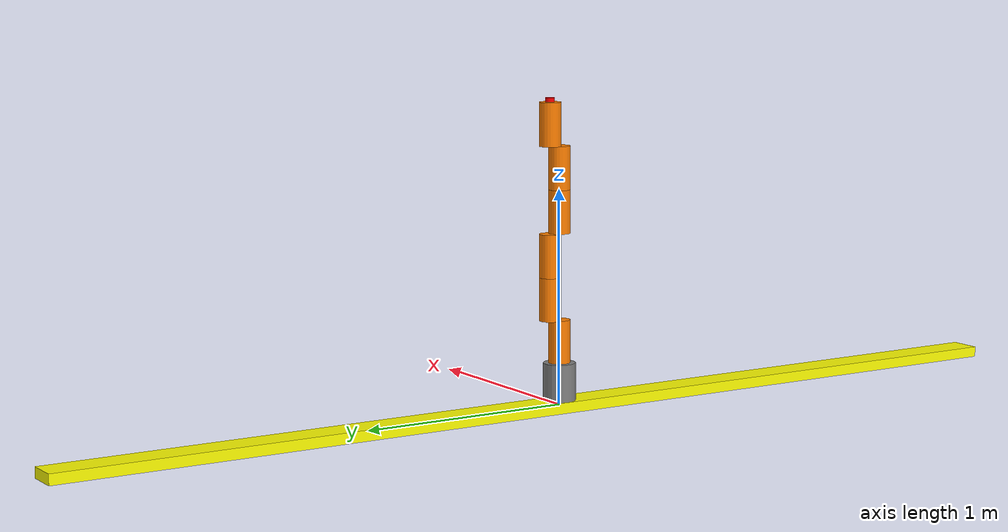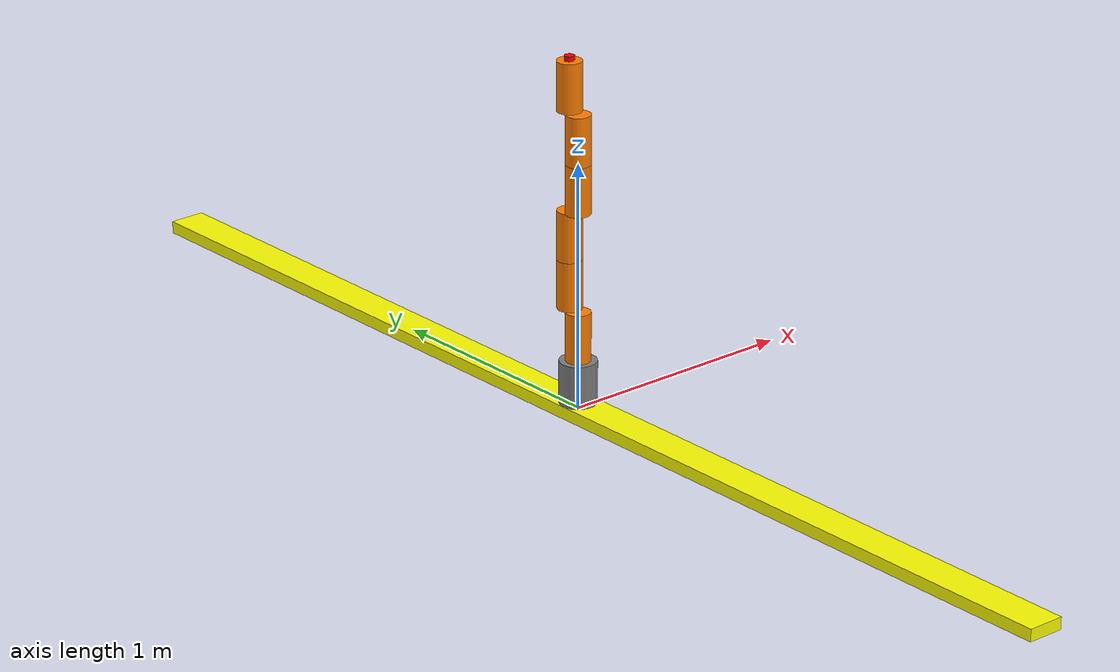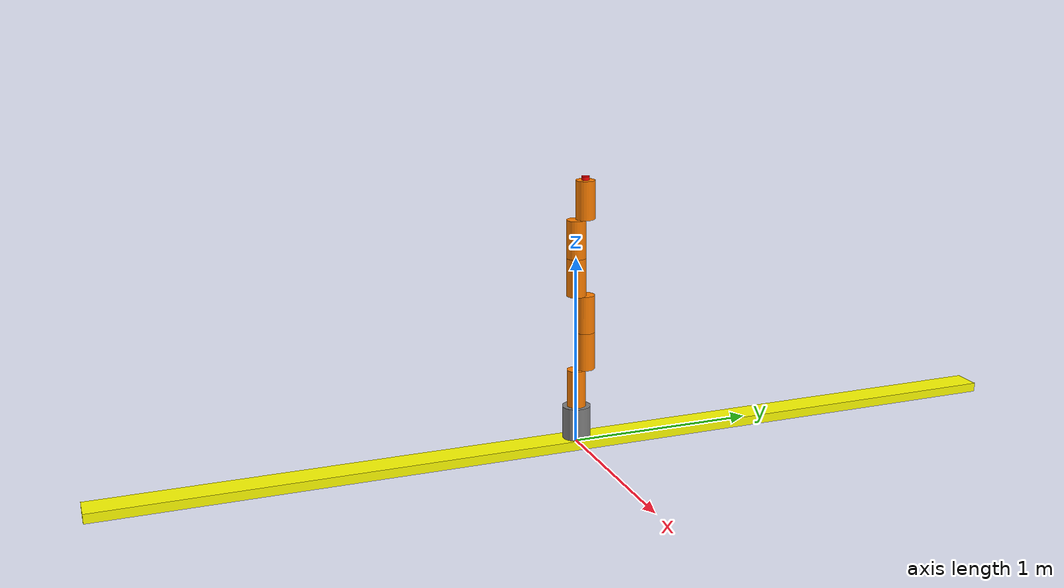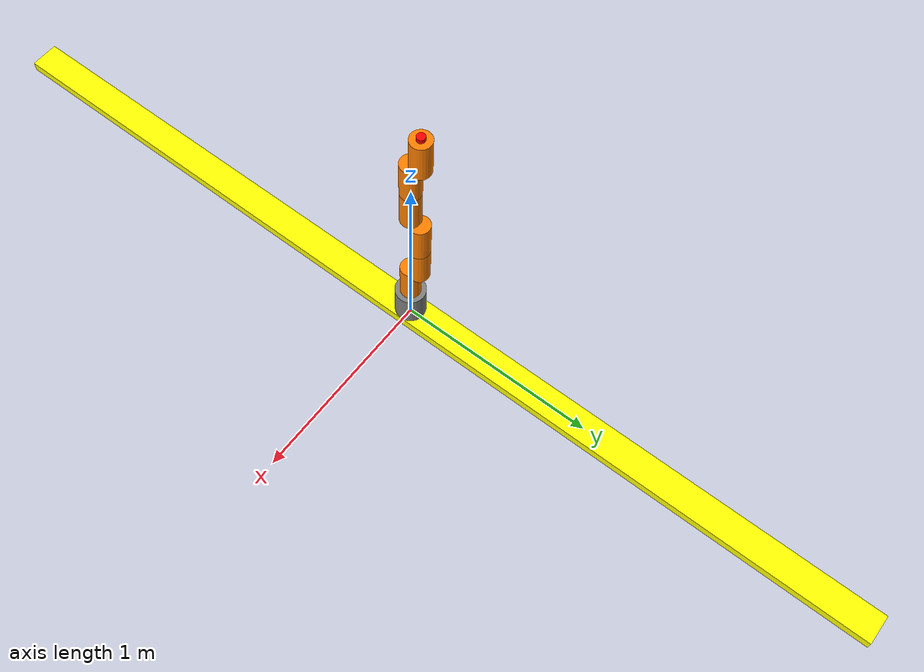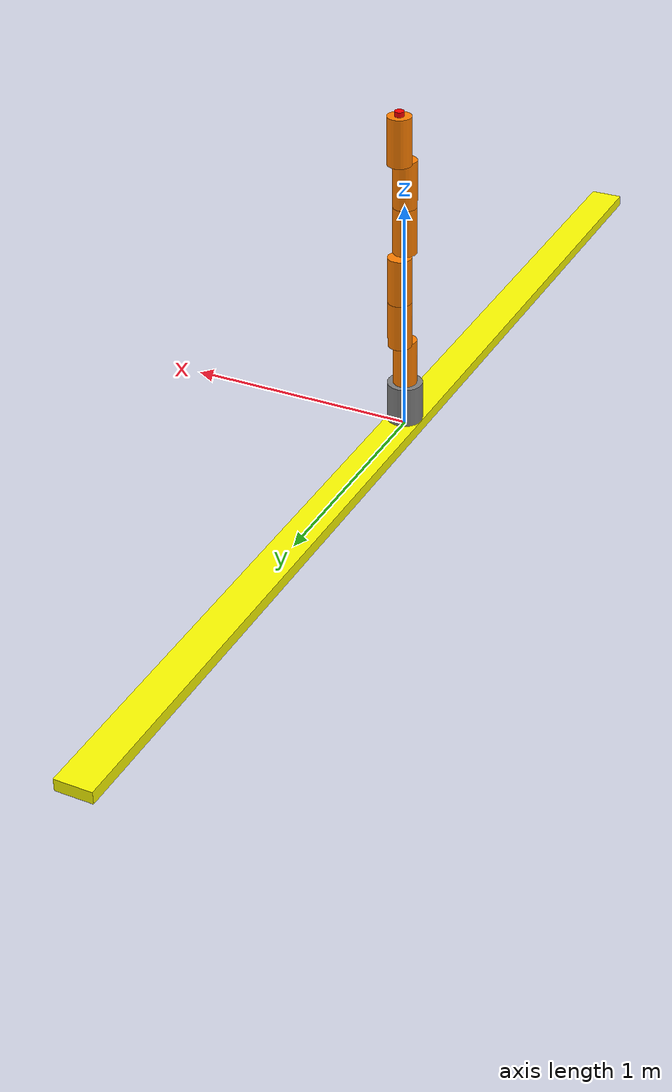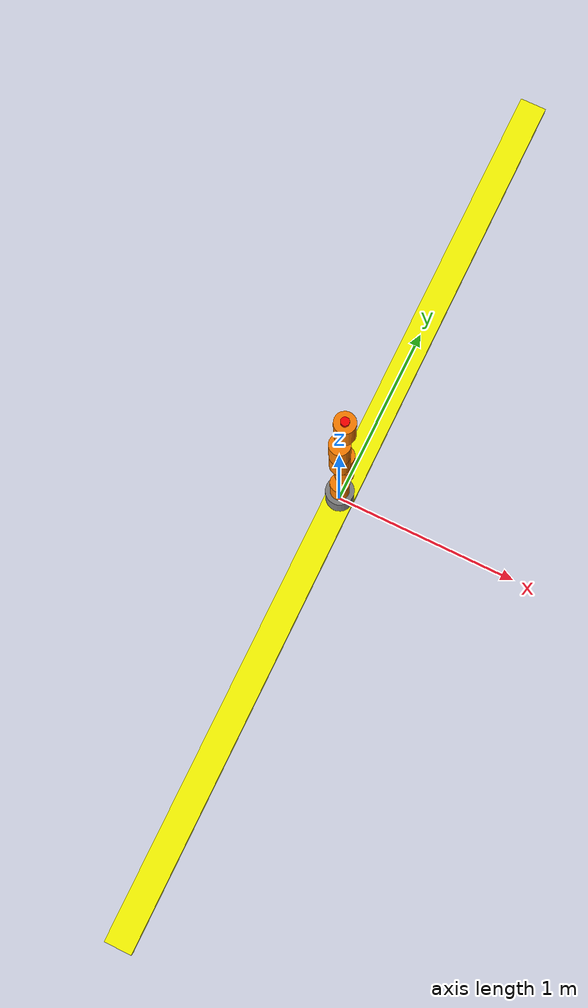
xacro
<?xml version="1.0"?>

<robot name="sliding_kuka" xmlns:xacro="http://wiki.ros.org/xacro">
    <xacro:include filename="$(find kuka_model_pkg)/urdf/kuka_macro.xacro" />

    <!-- Define slider -->
    <xacro:property name="slider_height" value="0.05" />
    <xacro:property name="slider_width"  value="0.15" />
    <xacro:property name="slider_length" value="5" />
    <link name="slider">
        <visual>
            <geometry>
                <box size="${slider_width} ${slider_length} ${slider_height}"/>
            </geometry>
            <origin rpy="0 0 0" xyz="0 0 0"/>
            <material name="yellow">
                <color rgba="1 1 0 1"/>
            </material>
        </visual>
        <collision>
            <geometry>
                <box size="${slider_width} ${slider_length} ${slider_height}"/>
            </geometry>
            <origin rpy="0 0 0" xyz="0 0 0"/>
        </collision>
    </link>

    <joint name="slider_joint" type="prismatic">
        <parent link="slider" />
        <child link="base_link" />
        <origin xyz="0 0 ${base_radius+slider_height/2}" />
        <axis xyz="0 1 0"/>
        <!-- Effort and velocity values are made up -->
        <limit effort="150" velocity="1" lower="-${slider_length/2}" upper="${slider_length/2}"/>
    </joint>

    <!-- Include KUKA -->
    <xacro:include filename="$(find kuka_model_pkg)/urdf/kuka.xacro" />
</robot>

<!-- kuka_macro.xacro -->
<robot name="kuka_macro" xmlns:xacro="http://wiki.ros.org/xacro">

    <xacro:property name="base_length" value="0.2" />
    <xacro:property name="base_radius" value="0.075" />
    <xacro:property name="link_length" value="0.2" />
    <xacro:property name="link_radius" value="0.05" />
    <xacro:property name="wrist_length" value="0.02" />
    <xacro:property name="wrist_radius" value="0.02" />

    <xacro:property name="base_geometry">
        <geometry>
            <cylinder length="${base_length}" radius="${base_radius}"/>
        </geometry>
    </xacro:property>

    <xacro:property name="link_geometry">
        <geometry>
            <cylinder length="${link_length}" radius="${link_radius}"/>
        </geometry>
    </xacro:property>

    <xacro:property name="wrist_geometry">
        <geometry>
            <cylinder length="${wrist_length}" radius="${wrist_radius}"/>
        </geometry>
    </xacro:property>

    <xacro:macro name="base_link_macro" params="base_link_name">
        <link name="${base_link_name}">
            <visual>
                <xacro:insert_block name="base_geometry" />
                <origin rpy="0 0 0" xyz="0 0 0"/>
                <material name="grey">
                    <color rgba="0.5 0.5 0.5 1"/>
                </material>
            </visual>
            <collision>
                <xacro:insert_block name="base_geometry" />
                <origin rpy="0 0 0" xyz="0 0 0"/>
            </collision>
        </link>
    </xacro:macro>

    <!-- Kuka robot only uses revolute joint. However, it's useful to have
       joint type as a parameter, because exercise n6 uses a prismatic joint -->
    <xacro:macro name="kuka_joint" params="name type parent child *origin *axis effort vel limit">
        <joint name="${name}" type="${type}">
            <parent link="${parent}" />
            <child link="${child}" />
            <xacro:insert_block name="origin" />
            <xacro:insert_block name="axis" />
            <limit effort="${effort}" velocity="${vel}" lower="-${radians(limit)}" upper="${radians(limit)}"/>
        </joint>
    </xacro:macro>

    <xacro:macro name="kuka_link" params="name *origin">
        <link name="${name}">
            <visual>
                <xacro:insert_block name="link_geometry" />
                <xacro:insert_block name="origin" />
                <material name="orange">
                    <color rgba="1 0.5 0 1"/>
                </material>
            </visual>
            <collision>
                <xacro:insert_block name="link_geometry" />
                <xacro:insert_block name="origin" />
            </collision>
        </link>
    </xacro:macro>

    <xacro:macro name="kuka_wrist" params="name *origin">
        <link name="${name}">
            <visual>
                <xacro:insert_block name="wrist_geometry" />
                <xacro:insert_block name="origin" />
                <material name="red">
                    <color rgba="1 0 0 1"/>
                </material>
            </visual>
            <collision>
                <xacro:insert_block name="wrist_geometry" />
                <xacro:insert_block name="origin" />
            </collision>
        </link>
    </xacro:macro>

</robot>

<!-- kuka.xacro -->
<robot name="kuka" xmlns:xacro="http://wiki.ros.org/xacro">
    <xacro:include filename="$(find kuka_model_pkg)/urdf/kuka_macro.xacro" />

    <xacro:base_link_macro
        base_link_name="base_link">
    </xacro:base_link_macro>

    <xacro:kuka_joint
        name="joint1"
        type="revolute"
        parent="base_link"
        child="link1"
        effort="176"
        vel="98"
        limit="170">
        <origin xyz="0 0 ${base_length/2}" />
        <axis xyz="0 0 1"/>
    </xacro:kuka_joint>

    <xacro:kuka_link name="link1">
        <origin xyz="0 0 ${link_length/2}" rpy="0 0 0"/>
    </xacro:kuka_link>

    <xacro:kuka_joint
        name="joint2"
        type="revolute"
        parent="link1"
        child="link2"
        effort="176"
        vel="98"
        limit="120">
        <origin xyz="0 ${link_radius} ${link_length}"/>
        <axis xyz="0 1 0"/>
    </xacro:kuka_joint>

    <xacro:kuka_link name="link2">
        <origin xyz="0 0 ${link_length/2}" rpy="0 0 0"/>
    </xacro:kuka_link>

    <xacro:kuka_joint
        name="joint3"
        type="revolute"
        parent="link2"
        child="link3"
        effort="110"
        vel="100"
        limit="170">
        <origin xyz="0 0 ${link_length}" />
        <axis xyz="0 0 1"/>
        </xacro:kuka_joint>

    <xacro:kuka_link name="link3">
        <origin xyz="0 0 ${link_length/2}" rpy="0 0 0"/>
    </xacro:kuka_link>

    <xacro:kuka_joint
        name="joint4"
        type="revolute"
        parent="link3"
        child="link4"
        effort="110"
        vel="130"
        limit="120">
        <origin xyz="0 0 ${link_length}" />
        <axis xyz="0 -1 0"/>
    </xacro:kuka_joint>

    <xacro:kuka_link name="link4">
        <origin xyz="0 -${link_radius} ${link_length/2}" rpy="0 0 0"/>
    </xacro:kuka_link>

    <xacro:kuka_joint
        name="joint5"
        type="revolute"
        parent="link4"
        child="link5"
        effort="110"
        vel="140"
        limit="170">
        <origin xyz="0 -${link_radius} ${link_length}" />
        <axis xyz="0 0 1"/>
    </xacro:kuka_joint>

    <xacro:kuka_link name="link5">
        <origin xyz="0 0 ${link_length/2}" rpy="0 0 0"/>
    </xacro:kuka_link>

    <xacro:kuka_joint
        name="joint6"
        type="revolute"
        parent="link5"
        child="link6"
        effort="40"
        vel="180"
        limit="120">
        <origin xyz="0 ${link_radius} ${link_length}" />
        <axis xyz="0 1 0"/>
    </xacro:kuka_joint>

    <xacro:kuka_link name="link6">
        <origin xyz="0 0 ${link_length/2}" rpy="0 0 0"/>
    </xacro:kuka_link>

    <xacro:kuka_joint
        name="joint7"
        type="revolute"
        parent="link6"
        child="wrist"
        effort="40"
        vel="180"
        limit="175">
        <origin xyz="0 0 ${link_length}" />
        <axis xyz="0 0 1"/>
    </xacro:kuka_joint>

    <xacro:kuka_wrist name="wrist">
        <origin xyz="0 0 ${wrist_length/2}" rpy="0 0 0"/>
    </xacro:kuka_wrist>

</robot>
